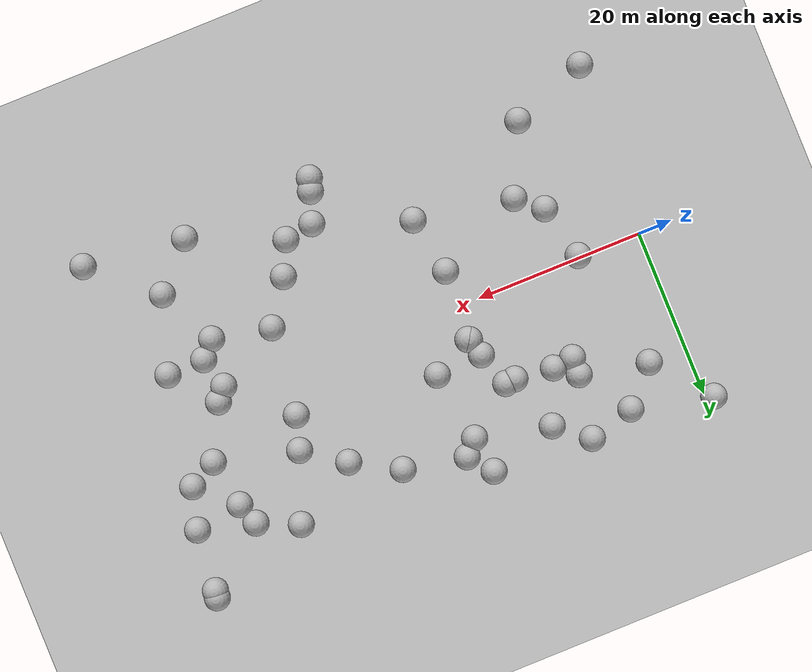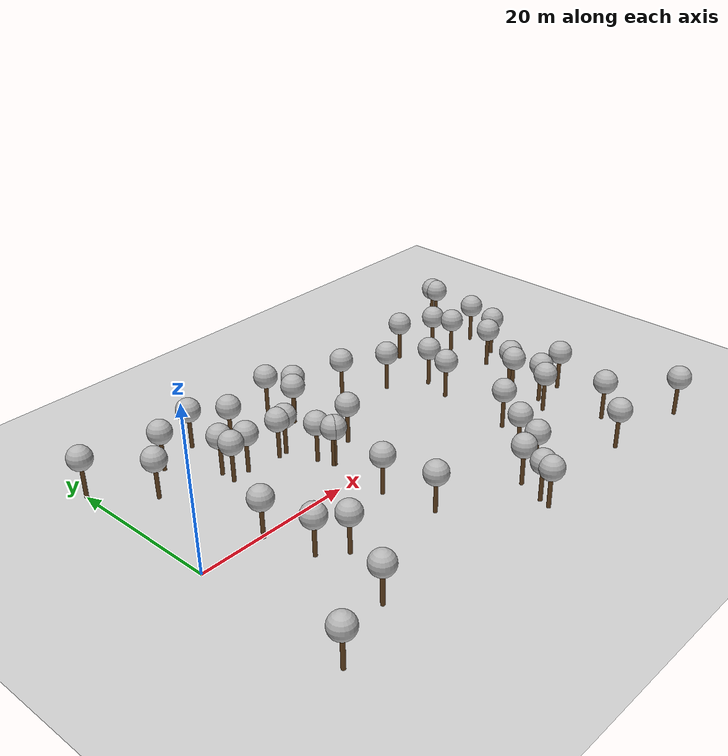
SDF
<sdf version='1.7'>
            <world name='default'>
                <light name='sun' type='directional'>
                <cast_shadows>1</cast_shadows>
                <pose>0 0 10 0 -0 0</pose>
                <diffuse>0.8 0.8 0.8 1</diffuse>
                <specular>0.2 0.2 0.2 1</specular>
                <attenuation>
                    <range>1000</range>
                    <constant>0.9</constant>
                    <linear>0.01</linear>
                    <quadratic>0.001</quadratic>
                </attenuation>
                <direction>-0.5 0.1 -0.9</direction>
                <spot>
                    <inner_angle>0</inner_angle>
                    <outer_angle>0</outer_angle>
                    <falloff>0</falloff>
                </spot>
                </light>
                <model name='ground_plane'>
                <static>1</static>
                <link name='link'>
                    <collision name='collision'>
                    <geometry>
                        <plane>
                        <normal>0 0 1</normal>
                        <size>100 100</size>
                        </plane>
                    </geometry>
                    <surface>
                        <contact>
                        <collide_bitmask>65535</collide_bitmask>
                        <ode/>
                        </contact>
                        <friction>
                        <ode>
                            <mu>100</mu>
                            <mu2>50</mu2>
                        </ode>
                        <torsional>
                            <ode/>
                        </torsional>
                        </friction>
                        <bounce/>
                    </surface>
                    <max_contacts>10</max_contacts>
                    </collision>
                    <visual name='visual'>
                    <cast_shadows>0</cast_shadows>
                    <geometry>
                        <plane>
                        <normal>0 0 1</normal>
                        <size>100 100</size>
                        </plane>
                    </geometry>
                    <material>
                        <script>
                        <uri>file://media/materials/scripts/gazebo.material</uri>
                        <name>Gazebo/Grey</name>
                        </script>
                    </material>
                    </visual>
                    <self_collide>0</self_collide>
                    <enable_wind>0</enable_wind>
                    <kinematic>0</kinematic>
                </link>
                </model>
                <gravity>0 0 -9.8</gravity>
                <magnetic_field>6e-06 2.3e-05 -4.2e-05</magnetic_field>
                <atmosphere type='adiabatic'/>
                <physics type='ode'>
                <max_step_size>0.001</max_step_size>
                <real_time_factor>1</real_time_factor>
                <real_time_update_rate>1000</real_time_update_rate>
                </physics>
                <scene>
                <ambient>0.4 0.4 0.4 1</ambient>
                <background>0.7 0.7 0.7 1</background>
                <shadows>1</shadows>
                </scene>
                <wind/>
                <spherical_coordinates>
                <surface_model>EARTH_WGS84</surface_model>
                <latitude_deg>0</latitude_deg>
                <longitude_deg>0</longitude_deg>
                <elevation>0</elevation>
                <heading_deg>0</heading_deg>
                </spherical_coordinates>

    <model name='tree_simple498'>
      <static>1</static>
      <link name='link'>
        <pose frame=''>0 0 0.1 0 -0 0</pose>
        <collision name='collision_trunk'>
          <pose frame=''>0 0 2 0 -0 0</pose>
          <geometry>
            <cylinder>
              <radius>0.25</radius>
              <length>4</length>
            </cylinder>
          </geometry>
        </collision>
        <collision name='collision_treetop'>
          <pose frame=''>0 0 5.2 0 -0 0</pose>
          <geometry>
            <sphere>
              <radius>1.5</radius>
            </sphere>
          </geometry>
        </collision>
        <visual name='trunk'>
          <pose frame=''>0 0 2 0 -0 0</pose>
          <geometry>
            <cylinder>
              <radius>0.25</radius>
              <length>4</length>
            </cylinder>
          </geometry>
          <material>
            <script>
              <uri>model://tree_simple/scripts</uri>
              <uri>model://tree_simple/materials/textures</uri>
              <name>TreeSimple/Trunk</name>
            </script>
          </material>
        </visual>
        <visual name='treetop'>
          <pose frame=''>0 0 5.2 0 -0 0</pose>
          <geometry>
            <sphere>
              <radius>1.5</radius>
            </sphere>
          </geometry>
          <material>
            <script>
              <uri>model://tree_simple/scripts</uri>
              <uri>model://tree_simple/materials/textures</uri>
              <name>TreeSimple/Treetop</name>
            </script>
          </material>
        </visual>
        <self_collide>0</self_collide>
        <kinematic>0</kinematic>
      </link>
      <pose frame=''>0.0 20.0 0 0 -0 0</pose>
    </model>
        <model name='tree_simple497'>
      <static>1</static>
      <link name='link'>
        <pose frame=''>0 0 0.1 0 -0 0</pose>
        <collision name='collision_trunk'>
          <pose frame=''>0 0 2 0 -0 0</pose>
          <geometry>
            <cylinder>
              <radius>0.25</radius>
              <length>4</length>
            </cylinder>
          </geometry>
        </collision>
        <collision name='collision_treetop'>
          <pose frame=''>0 0 5.2 0 -0 0</pose>
          <geometry>
            <sphere>
              <radius>1.5</radius>
            </sphere>
          </geometry>
        </collision>
        <visual name='trunk'>
          <pose frame=''>0 0 2 0 -0 0</pose>
          <geometry>
            <cylinder>
              <radius>0.25</radius>
              <length>4</length>
            </cylinder>
          </geometry>
          <material>
            <script>
              <uri>model://tree_simple/scripts</uri>
              <uri>model://tree_simple/materials/textures</uri>
              <name>TreeSimple/Trunk</name>
            </script>
          </material>
        </visual>
        <visual name='treetop'>
          <pose frame=''>0 0 5.2 0 -0 0</pose>
          <geometry>
            <sphere>
              <radius>1.5</radius>
            </sphere>
          </geometry>
          <material>
            <script>
              <uri>model://tree_simple/scripts</uri>
              <uri>model://tree_simple/materials/textures</uri>
              <name>TreeSimple/Treetop</name>
            </script>
          </material>
        </visual>
        <self_collide>0</self_collide>
        <kinematic>0</kinematic>
      </link>
      <pose frame=''>0.0 -20.0 0 0 -0 0</pose>
    </model>
        <model name='tree_simple496'>
      <static>1</static>
      <link name='link'>
        <pose frame=''>0 0 0.1 0 -0 0</pose>
        <collision name='collision_trunk'>
          <pose frame=''>0 0 2 0 -0 0</pose>
          <geometry>
            <cylinder>
              <radius>0.25</radius>
              <length>4</length>
            </cylinder>
          </geometry>
        </collision>
        <collision name='collision_treetop'>
          <pose frame=''>0 0 5.2 0 -0 0</pose>
          <geometry>
            <sphere>
              <radius>1.5</radius>
            </sphere>
          </geometry>
        </collision>
        <visual name='trunk'>
          <pose frame=''>0 0 2 0 -0 0</pose>
          <geometry>
            <cylinder>
              <radius>0.25</radius>
              <length>4</length>
            </cylinder>
          </geometry>
          <material>
            <script>
              <uri>model://tree_simple/scripts</uri>
              <uri>model://tree_simple/materials/textures</uri>
              <name>TreeSimple/Trunk</name>
            </script>
          </material>
        </visual>
        <visual name='treetop'>
          <pose frame=''>0 0 5.2 0 -0 0</pose>
          <geometry>
            <sphere>
              <radius>1.5</radius>
            </sphere>
          </geometry>
          <material>
            <script>
              <uri>model://tree_simple/scripts</uri>
              <uri>model://tree_simple/materials/textures</uri>
              <name>TreeSimple/Treetop</name>
            </script>
          </material>
        </visual>
        <self_collide>0</self_collide>
        <kinematic>0</kinematic>
      </link>
      <pose frame=''>60.0 20.0 0 0 -0 0</pose>
    </model>
        <model name='tree_simple495'>
      <static>1</static>
      <link name='link'>
        <pose frame=''>0 0 0.1 0 -0 0</pose>
        <collision name='collision_trunk'>
          <pose frame=''>0 0 2 0 -0 0</pose>
          <geometry>
            <cylinder>
              <radius>0.25</radius>
              <length>4</length>
            </cylinder>
          </geometry>
        </collision>
        <collision name='collision_treetop'>
          <pose frame=''>0 0 5.2 0 -0 0</pose>
          <geometry>
            <sphere>
              <radius>1.5</radius>
            </sphere>
          </geometry>
        </collision>
        <visual name='trunk'>
          <pose frame=''>0 0 2 0 -0 0</pose>
          <geometry>
            <cylinder>
              <radius>0.25</radius>
              <length>4</length>
            </cylinder>
          </geometry>
          <material>
            <script>
              <uri>model://tree_simple/scripts</uri>
              <uri>model://tree_simple/materials/textures</uri>
              <name>TreeSimple/Trunk</name>
            </script>
          </material>
        </visual>
        <visual name='treetop'>
          <pose frame=''>0 0 5.2 0 -0 0</pose>
          <geometry>
            <sphere>
              <radius>1.5</radius>
            </sphere>
          </geometry>
          <material>
            <script>
              <uri>model://tree_simple/scripts</uri>
              <uri>model://tree_simple/materials/textures</uri>
              <name>TreeSimple/Treetop</name>
            </script>
          </material>
        </visual>
        <self_collide>0</self_collide>
        <kinematic>0</kinematic>
      </link>
      <pose frame=''>60.0 -20.0 0 0 -0 0</pose>
    </model>
    <model name="tree_4_0"><pose frame="">54.72 5.77 0 0 -0 0</pose><static>1</static><link name="link"><pose frame="">0 0 0.1 0 -0 0</pose><collision name="collision_trunk"><pose frame="">0 0 2 0 -0 0</pose><geometry><cylinder><radius>0.25</radius><length>4</length></cylinder></geometry></collision><collision name="collision_treetop"><pose frame="">0 0 5.2 0 -0 0</pose><geometry><sphere><radius>1.5</radius></sphere></geometry></collision><visual name="trunk"><pose frame="">0 0 2 0 -0 0</pose><geometry><cylinder><radius>0.25</radius><length>4</length></cylinder></geometry><material><script><uri>model://tree_simple/scripts</uri><uri>model://tree_simple/materials/textures</uri><name>TreeSimple/Trunk</name></script></material></visual><visual name="treetop"><pose frame="">0 0 5.2 0 -0 0</pose><geometry><sphere><radius>1.5</radius></sphere></geometry><material><script><uri>model://tree_simple/scripts</uri><uri>model://tree_simple/materials/textures</uri><name>TreeSimple/Treetop</name></script></material></visual><self_collide>0</self_collide><kinematic>0</kinematic></link></model><model name="tree_4_1"><pose frame="">21.07 9.92 0 0 -0 0</pose><static>1</static><link name="link"><pose frame="">0 0 0.1 0 -0 0</pose><collision name="collision_trunk"><pose frame="">0 0 2 0 -0 0</pose><geometry><cylinder><radius>0.25</radius><length>4</length></cylinder></geometry></collision><collision name="collision_treetop"><pose frame="">0 0 5.2 0 -0 0</pose><geometry><sphere><radius>1.5</radius></sphere></geometry></collision><visual name="trunk"><pose frame="">0 0 2 0 -0 0</pose><geometry><cylinder><radius>0.25</radius><length>4</length></cylinder></geometry><material><script><uri>model://tree_simple/scripts</uri><uri>model://tree_simple/materials/textures</uri><name>TreeSimple/Trunk</name></script></material></visual><visual name="treetop"><pose frame="">0 0 5.2 0 -0 0</pose><geometry><sphere><radius>1.5</radius></sphere></geometry><material><script><uri>model://tree_simple/scripts</uri><uri>model://tree_simple/materials/textures</uri><name>TreeSimple/Treetop</name></script></material></visual><self_collide>0</self_collide><kinematic>0</kinematic></link></model><model name="tree_4_2"><pose frame="">13.05 10.04 0 0 -0 0</pose><static>1</static><link name="link"><pose frame="">0 0 0.1 0 -0 0</pose><collision name="collision_trunk"><pose frame="">0 0 2 0 -0 0</pose><geometry><cylinder><radius>0.25</radius><length>4</length></cylinder></geometry></collision><collision name="collision_treetop"><pose frame="">0 0 5.2 0 -0 0</pose><geometry><sphere><radius>1.5</radius></sphere></geometry></collision><visual name="trunk"><pose frame="">0 0 2 0 -0 0</pose><geometry><cylinder><radius>0.25</radius><length>4</length></cylinder></geometry><material><script><uri>model://tree_simple/scripts</uri><uri>model://tree_simple/materials/textures</uri><name>TreeSimple/Trunk</name></script></material></visual><visual name="treetop"><pose frame="">0 0 5.2 0 -0 0</pose><geometry><sphere><radius>1.5</radius></sphere></geometry><material><script><uri>model://tree_simple/scripts</uri><uri>model://tree_simple/materials/textures</uri><name>TreeSimple/Treetop</name></script></material></visual><self_collide>0</self_collide><kinematic>0</kinematic></link></model><model name="tree_4_3"><pose frame="">8.17 -0.31 0 0 -0 0</pose><static>1</static><link name="link"><pose frame="">0 0 0.1 0 -0 0</pose><collision name="collision_trunk"><pose frame="">0 0 2 0 -0 0</pose><geometry><cylinder><radius>0.25</radius><length>4</length></cylinder></geometry></collision><collision name="collision_treetop"><pose frame="">0 0 5.2 0 -0 0</pose><geometry><sphere><radius>1.5</radius></sphere></geometry></collision><visual name="trunk"><pose frame="">0 0 2 0 -0 0</pose><geometry><cylinder><radius>0.25</radius><length>4</length></cylinder></geometry><material><script><uri>model://tree_simple/scripts</uri><uri>model://tree_simple/materials/textures</uri><name>TreeSimple/Trunk</name></script></material></visual><visual name="treetop"><pose frame="">0 0 5.2 0 -0 0</pose><geometry><sphere><radius>1.5</radius></sphere></geometry><material><script><uri>model://tree_simple/scripts</uri><uri>model://tree_simple/materials/textures</uri><name>TreeSimple/Treetop</name></script></material></visual><self_collide>0</self_collide><kinematic>0</kinematic></link></model><model name="tree_4_4"><pose frame="">18.03 16.28 0 0 -0 0</pose><static>1</static><link name="link"><pose frame="">0 0 0.1 0 -0 0</pose><collision name="collision_trunk"><pose frame="">0 0 2 0 -0 0</pose><geometry><cylinder><radius>0.25</radius><length>4</length></cylinder></geometry></collision><collision name="collision_treetop"><pose frame="">0 0 5.2 0 -0 0</pose><geometry><sphere><radius>1.5</radius></sphere></geometry></collision><visual name="trunk"><pose frame="">0 0 2 0 -0 0</pose><geometry><cylinder><radius>0.25</radius><length>4</length></cylinder></geometry><material><script><uri>model://tree_simple/scripts</uri><uri>model://tree_simple/materials/textures</uri><name>TreeSimple/Trunk</name></script></material></visual><visual name="treetop"><pose frame="">0 0 5.2 0 -0 0</pose><geometry><sphere><radius>1.5</radius></sphere></geometry><material><script><uri>model://tree_simple/scripts</uri><uri>model://tree_simple/materials/textures</uri><name>TreeSimple/Treetop</name></script></material></visual><self_collide>0</self_collide><kinematic>0</kinematic></link></model><model name="tree_4_5"><pose frame="">40.67 11.48 0 0 -0 0</pose><static>1</static><link name="link"><pose frame="">0 0 0.1 0 -0 0</pose><collision name="collision_trunk"><pose frame="">0 0 2 0 -0 0</pose><geometry><cylinder><radius>0.25</radius><length>4</length></cylinder></geometry></collision><collision name="collision_treetop"><pose frame="">0 0 5.2 0 -0 0</pose><geometry><sphere><radius>1.5</radius></sphere></geometry></collision><visual name="trunk"><pose frame="">0 0 2 0 -0 0</pose><geometry><cylinder><radius>0.25</radius><length>4</length></cylinder></geometry><material><script><uri>model://tree_simple/scripts</uri><uri>model://tree_simple/materials/textures</uri><name>TreeSimple/Trunk</name></script></material></visual><visual name="treetop"><pose frame="">0 0 5.2 0 -0 0</pose><geometry><sphere><radius>1.5</radius></sphere></geometry><material><script><uri>model://tree_simple/scripts</uri><uri>model://tree_simple/materials/textures</uri><name>TreeSimple/Treetop</name></script></material></visual><self_collide>0</self_collide><kinematic>0</kinematic></link></model><model name="tree_4_6"><pose frame="">9.16 17.82 0 0 -0 0</pose><static>1</static><link name="link"><pose frame="">0 0 0.1 0 -0 0</pose><collision name="collision_trunk"><pose frame="">0 0 2 0 -0 0</pose><geometry><cylinder><radius>0.25</radius><length>4</length></cylinder></geometry></collision><collision name="collision_treetop"><pose frame="">0 0 5.2 0 -0 0</pose><geometry><sphere><radius>1.5</radius></sphere></geometry></collision><visual name="trunk"><pose frame="">0 0 2 0 -0 0</pose><geometry><cylinder><radius>0.25</radius><length>4</length></cylinder></geometry><material><script><uri>model://tree_simple/scripts</uri><uri>model://tree_simple/materials/textures</uri><name>TreeSimple/Trunk</name></script></material></visual><visual name="treetop"><pose frame="">0 0 5.2 0 -0 0</pose><geometry><sphere><radius>1.5</radius></sphere></geometry><material><script><uri>model://tree_simple/scripts</uri><uri>model://tree_simple/materials/textures</uri><name>TreeSimple/Treetop</name></script></material></visual><self_collide>0</self_collide><kinematic>0</kinematic></link></model><model name="tree_4_7"><pose frame="">51.4 -5.26 0 0 -0 0</pose><static>1</static><link name="link"><pose frame="">0 0 0.1 0 -0 0</pose><collision name="collision_trunk"><pose frame="">0 0 2 0 -0 0</pose><geometry><cylinder><radius>0.25</radius><length>4</length></cylinder></geometry></collision><collision name="collision_treetop"><pose frame="">0 0 5.2 0 -0 0</pose><geometry><sphere><radius>1.5</radius></sphere></geometry></collision><visual name="trunk"><pose frame="">0 0 2 0 -0 0</pose><geometry><cylinder><radius>0.25</radius><length>4</length></cylinder></geometry><material><script><uri>model://tree_simple/scripts</uri><uri>model://tree_simple/materials/textures</uri><name>TreeSimple/Trunk</name></script></material></visual><visual name="treetop"><pose frame="">0 0 5.2 0 -0 0</pose><geometry><sphere><radius>1.5</radius></sphere></geometry><material><script><uri>model://tree_simple/scripts</uri><uri>model://tree_simple/materials/textures</uri><name>TreeSimple/Treetop</name></script></material></visual><self_collide>0</self_collide><kinematic>0</kinematic></link></model><model name="tree_4_8"><pose frame="">51.66 -0.26 0 0 -0 0</pose><static>1</static><link name="link"><pose frame="">0 0 0.1 0 -0 0</pose><collision name="collision_trunk"><pose frame="">0 0 2 0 -0 0</pose><geometry><cylinder><radius>0.25</radius><length>4</length></cylinder></geometry></collision><collision name="collision_treetop"><pose frame="">0 0 5.2 0 -0 0</pose><geometry><sphere><radius>1.5</radius></sphere></geometry></collision><visual name="trunk"><pose frame="">0 0 2 0 -0 0</pose><geometry><cylinder><radius>0.25</radius><length>4</length></cylinder></geometry><material><script><uri>model://tree_simple/scripts</uri><uri>model://tree_simple/materials/textures</uri><name>TreeSimple/Trunk</name></script></material></visual><visual name="treetop"><pose frame="">0 0 5.2 0 -0 0</pose><geometry><sphere><radius>1.5</radius></sphere></geometry><material><script><uri>model://tree_simple/scripts</uri><uri>model://tree_simple/materials/textures</uri><name>TreeSimple/Treetop</name></script></material></visual><self_collide>0</self_collide><kinematic>0</kinematic></link></model><model name="tree_4_9"><pose frame="">23.81 -10.92 0 0 -0 0</pose><static>1</static><link name="link"><pose frame="">0 0 0.1 0 -0 0</pose><collision name="collision_trunk"><pose frame="">0 0 2 0 -0 0</pose><geometry><cylinder><radius>0.25</radius><length>4</length></cylinder></geometry></collision><collision name="collision_treetop"><pose frame="">0 0 5.2 0 -0 0</pose><geometry><sphere><radius>1.5</radius></sphere></geometry></collision><visual name="trunk"><pose frame="">0 0 2 0 -0 0</pose><geometry><cylinder><radius>0.25</radius><length>4</length></cylinder></geometry><material><script><uri>model://tree_simple/scripts</uri><uri>model://tree_simple/materials/textures</uri><name>TreeSimple/Trunk</name></script></material></visual><visual name="treetop"><pose frame="">0 0 5.2 0 -0 0</pose><geometry><sphere><radius>1.5</radius></sphere></geometry><material><script><uri>model://tree_simple/scripts</uri><uri>model://tree_simple/materials/textures</uri><name>TreeSimple/Treetop</name></script></material></visual><self_collide>0</self_collide><kinematic>0</kinematic></link></model><model name="tree_4_10"><pose frame="">55.77 -5.17 0 0 -0 0</pose><static>1</static><link name="link"><pose frame="">0 0 0.1 0 -0 0</pose><collision name="collision_trunk"><pose frame="">0 0 2 0 -0 0</pose><geometry><cylinder><radius>0.25</radius><length>4</length></cylinder></geometry></collision><collision name="collision_treetop"><pose frame="">0 0 5.2 0 -0 0</pose><geometry><sphere><radius>1.5</radius></sphere></geometry></collision><visual name="trunk"><pose frame="">0 0 2 0 -0 0</pose><geometry><cylinder><radius>0.25</radius><length>4</length></cylinder></geometry><material><script><uri>model://tree_simple/scripts</uri><uri>model://tree_simple/materials/textures</uri><name>TreeSimple/Trunk</name></script></material></visual><visual name="treetop"><pose frame="">0 0 5.2 0 -0 0</pose><geometry><sphere><radius>1.5</radius></sphere></geometry><material><script><uri>model://tree_simple/scripts</uri><uri>model://tree_simple/materials/textures</uri><name>TreeSimple/Treetop</name></script></material></visual><self_collide>0</self_collide><kinematic>0</kinematic></link></model><model name="tree_4_11"><pose frame="">22.99 3.85 0 0 -0 0</pose><static>1</static><link name="link"><pose frame="">0 0 0.1 0 -0 0</pose><collision name="collision_trunk"><pose frame="">0 0 2 0 -0 0</pose><geometry><cylinder><radius>0.25</radius><length>4</length></cylinder></geometry></collision><collision name="collision_treetop"><pose frame="">0 0 5.2 0 -0 0</pose><geometry><sphere><radius>1.5</radius></sphere></geometry></collision><visual name="trunk"><pose frame="">0 0 2 0 -0 0</pose><geometry><cylinder><radius>0.25</radius><length>4</length></cylinder></geometry><material><script><uri>model://tree_simple/scripts</uri><uri>model://tree_simple/materials/textures</uri><name>TreeSimple/Trunk</name></script></material></visual><visual name="treetop"><pose frame="">0 0 5.2 0 -0 0</pose><geometry><sphere><radius>1.5</radius></sphere></geometry><material><script><uri>model://tree_simple/scripts</uri><uri>model://tree_simple/materials/textures</uri><name>TreeSimple/Treetop</name></script></material></visual><self_collide>0</self_collide><kinematic>0</kinematic></link></model><model name="tree_4_12"><pose frame="">22.39 5.93 0 0 -0 0</pose><static>1</static><link name="link"><pose frame="">0 0 0.1 0 -0 0</pose><collision name="collision_trunk"><pose frame="">0 0 2 0 -0 0</pose><geometry><cylinder><radius>0.25</radius><length>4</length></cylinder></geometry></collision><collision name="collision_treetop"><pose frame="">0 0 5.2 0 -0 0</pose><geometry><sphere><radius>1.5</radius></sphere></geometry></collision><visual name="trunk"><pose frame="">0 0 2 0 -0 0</pose><geometry><cylinder><radius>0.25</radius><length>4</length></cylinder></geometry><material><script><uri>model://tree_simple/scripts</uri><uri>model://tree_simple/materials/textures</uri><name>TreeSimple/Trunk</name></script></material></visual><visual name="treetop"><pose frame="">0 0 5.2 0 -0 0</pose><geometry><sphere><radius>1.5</radius></sphere></geometry><material><script><uri>model://tree_simple/scripts</uri><uri>model://tree_simple/materials/textures</uri><name>TreeSimple/Treetop</name></script></material></visual><self_collide>0</self_collide><kinematic>0</kinematic></link></model><model name="tree_4_13"><pose frame="">48.29 -18.65 0 0 -0 0</pose><static>1</static><link name="link"><pose frame="">0 0 0.1 0 -0 0</pose><collision name="collision_trunk"><pose frame="">0 0 2 0 -0 0</pose><geometry><cylinder><radius>0.25</radius><length>4</length></cylinder></geometry></collision><collision name="collision_treetop"><pose frame="">0 0 5.2 0 -0 0</pose><geometry><sphere><radius>1.5</radius></sphere></geometry></collision><visual name="trunk"><pose frame="">0 0 2 0 -0 0</pose><geometry><cylinder><radius>0.25</radius><length>4</length></cylinder></geometry><material><script><uri>model://tree_simple/scripts</uri><uri>model://tree_simple/materials/textures</uri><name>TreeSimple/Trunk</name></script></material></visual><visual name="treetop"><pose frame="">0 0 5.2 0 -0 0</pose><geometry><sphere><radius>1.5</radius></sphere></geometry><material><script><uri>model://tree_simple/scripts</uri><uri>model://tree_simple/materials/textures</uri><name>TreeSimple/Treetop</name></script></material></visual><self_collide>0</self_collide><kinematic>0</kinematic></link></model><model name="tree_4_14"><pose frame="">35.34 14.52 0 0 -0 0</pose><static>1</static><link name="link"><pose frame="">0 0 0.1 0 -0 0</pose><collision name="collision_trunk"><pose frame="">0 0 2 0 -0 0</pose><geometry><cylinder><radius>0.25</radius><length>4</length></cylinder></geometry></collision><collision name="collision_treetop"><pose frame="">0 0 5.2 0 -0 0</pose><geometry><sphere><radius>1.5</radius></sphere></geometry></collision><visual name="trunk"><pose frame="">0 0 2 0 -0 0</pose><geometry><cylinder><radius>0.25</radius><length>4</length></cylinder></geometry><material><script><uri>model://tree_simple/scripts</uri><uri>model://tree_simple/materials/textures</uri><name>TreeSimple/Trunk</name></script></material></visual><visual name="treetop"><pose frame="">0 0 5.2 0 -0 0</pose><geometry><sphere><radius>1.5</radius></sphere></geometry><material><script><uri>model://tree_simple/scripts</uri><uri>model://tree_simple/materials/textures</uri><name>TreeSimple/Treetop</name></script></material></visual><self_collide>0</self_collide><kinematic>0</kinematic></link></model><model name="tree_4_15"><pose frame="">28.15 15.91 0 0 -0 0</pose><static>1</static><link name="link"><pose frame="">0 0 0.1 0 -0 0</pose><collision name="collision_trunk"><pose frame="">0 0 2 0 -0 0</pose><geometry><cylinder><radius>0.25</radius><length>4</length></cylinder></geometry></collision><collision name="collision_treetop"><pose frame="">0 0 5.2 0 -0 0</pose><geometry><sphere><radius>1.5</radius></sphere></geometry></collision><visual name="trunk"><pose frame="">0 0 2 0 -0 0</pose><geometry><cylinder><radius>0.25</radius><length>4</length></cylinder></geometry><material><script><uri>model://tree_simple/scripts</uri><uri>model://tree_simple/materials/textures</uri><name>TreeSimple/Trunk</name></script></material></visual><visual name="treetop"><pose frame="">0 0 5.2 0 -0 0</pose><geometry><sphere><radius>1.5</radius></sphere></geometry><material><script><uri>model://tree_simple/scripts</uri><uri>model://tree_simple/materials/textures</uri><name>TreeSimple/Treetop</name></script></material></visual><self_collide>0</self_collide><kinematic>0</kinematic></link></model><model name="tree_4_16"><pose frame="">59.9 19.19 0 0 -0 0</pose><static>1</static><link name="link"><pose frame="">0 0 0.1 0 -0 0</pose><collision name="collision_trunk"><pose frame="">0 0 2 0 -0 0</pose><geometry><cylinder><radius>0.25</radius><length>4</length></cylinder></geometry></collision><collision name="collision_treetop"><pose frame="">0 0 5.2 0 -0 0</pose><geometry><sphere><radius>1.5</radius></sphere></geometry></collision><visual name="trunk"><pose frame="">0 0 2 0 -0 0</pose><geometry><cylinder><radius>0.25</radius><length>4</length></cylinder></geometry><material><script><uri>model://tree_simple/scripts</uri><uri>model://tree_simple/materials/textures</uri><name>TreeSimple/Trunk</name></script></material></visual><visual name="treetop"><pose frame="">0 0 5.2 0 -0 0</pose><geometry><sphere><radius>1.5</radius></sphere></geometry><material><script><uri>model://tree_simple/scripts</uri><uri>model://tree_simple/materials/textures</uri><name>TreeSimple/Treetop</name></script></material></visual><self_collide>0</self_collide><kinematic>0</kinematic></link></model><model name="tree_4_17"><pose frame="">13.08 12.1 0 0 -0 0</pose><static>1</static><link name="link"><pose frame="">0 0 0.1 0 -0 0</pose><collision name="collision_trunk"><pose frame="">0 0 2 0 -0 0</pose><geometry><cylinder><radius>0.25</radius><length>4</length></cylinder></geometry></collision><collision name="collision_treetop"><pose frame="">0 0 5.2 0 -0 0</pose><geometry><sphere><radius>1.5</radius></sphere></geometry></collision><visual name="trunk"><pose frame="">0 0 2 0 -0 0</pose><geometry><cylinder><radius>0.25</radius><length>4</length></cylinder></geometry><material><script><uri>model://tree_simple/scripts</uri><uri>model://tree_simple/materials/textures</uri><name>TreeSimple/Trunk</name></script></material></visual><visual name="treetop"><pose frame="">0 0 5.2 0 -0 0</pose><geometry><sphere><radius>1.5</radius></sphere></geometry><material><script><uri>model://tree_simple/scripts</uri><uri>model://tree_simple/materials/textures</uri><name>TreeSimple/Treetop</name></script></material></visual><self_collide>0</self_collide><kinematic>0</kinematic></link></model><model name="tree_4_18"><pose frame="">59.2 12.15 0 0 -0 0</pose><static>1</static><link name="link"><pose frame="">0 0 0.1 0 -0 0</pose><collision name="collision_trunk"><pose frame="">0 0 2 0 -0 0</pose><geometry><cylinder><radius>0.25</radius><length>4</length></cylinder></geometry></collision><collision name="collision_treetop"><pose frame="">0 0 5.2 0 -0 0</pose><geometry><sphere><radius>1.5</radius></sphere></geometry></collision><visual name="trunk"><pose frame="">0 0 2 0 -0 0</pose><geometry><cylinder><radius>0.25</radius><length>4</length></cylinder></geometry><material><script><uri>model://tree_simple/scripts</uri><uri>model://tree_simple/materials/textures</uri><name>TreeSimple/Trunk</name></script></material></visual><visual name="treetop"><pose frame="">0 0 5.2 0 -0 0</pose><geometry><sphere><radius>1.5</radius></sphere></geometry><material><script><uri>model://tree_simple/scripts</uri><uri>model://tree_simple/materials/textures</uri><name>TreeSimple/Treetop</name></script></material></visual><self_collide>0</self_collide><kinematic>0</kinematic></link></model><model name="tree_4_19"><pose frame="">25.97 18.53 0 0 -0 0</pose><static>1</static><link name="link"><pose frame="">0 0 0.1 0 -0 0</pose><collision name="collision_trunk"><pose frame="">0 0 2 0 -0 0</pose><geometry><cylinder><radius>0.25</radius><length>4</length></cylinder></geometry></collision><collision name="collision_treetop"><pose frame="">0 0 5.2 0 -0 0</pose><geometry><sphere><radius>1.5</radius></sphere></geometry></collision><visual name="trunk"><pose frame="">0 0 2 0 -0 0</pose><geometry><cylinder><radius>0.25</radius><length>4</length></cylinder></geometry><material><script><uri>model://tree_simple/scripts</uri><uri>model://tree_simple/materials/textures</uri><name>TreeSimple/Trunk</name></script></material></visual><visual name="treetop"><pose frame="">0 0 5.2 0 -0 0</pose><geometry><sphere><radius>1.5</radius></sphere></geometry><material><script><uri>model://tree_simple/scripts</uri><uri>model://tree_simple/materials/textures</uri><name>TreeSimple/Treetop</name></script></material></visual><self_collide>0</self_collide><kinematic>0</kinematic></link></model><model name="tree_4_20"><pose frame="">52.85 13.89 0 0 -0 0</pose><static>1</static><link name="link"><pose frame="">0 0 0.1 0 -0 0</pose><collision name="collision_trunk"><pose frame="">0 0 2 0 -0 0</pose><geometry><cylinder><radius>0.25</radius><length>4</length></cylinder></geometry></collision><collision name="collision_treetop"><pose frame="">0 0 5.2 0 -0 0</pose><geometry><sphere><radius>1.5</radius></sphere></geometry></collision><visual name="trunk"><pose frame="">0 0 2 0 -0 0</pose><geometry><cylinder><radius>0.25</radius><length>4</length></cylinder></geometry><material><script><uri>model://tree_simple/scripts</uri><uri>model://tree_simple/materials/textures</uri><name>TreeSimple/Trunk</name></script></material></visual><visual name="treetop"><pose frame="">0 0 5.2 0 -0 0</pose><geometry><sphere><radius>1.5</radius></sphere></geometry><material><script><uri>model://tree_simple/scripts</uri><uri>model://tree_simple/materials/textures</uri><name>TreeSimple/Treetop</name></script></material></visual><self_collide>0</self_collide><kinematic>0</kinematic></link></model><model name="tree_4_21"><pose frame="">49.71 -7.08 0 0 -0 0</pose><static>1</static><link name="link"><pose frame="">0 0 0.1 0 -0 0</pose><collision name="collision_trunk"><pose frame="">0 0 2 0 -0 0</pose><geometry><cylinder><radius>0.25</radius><length>4</length></cylinder></geometry></collision><collision name="collision_treetop"><pose frame="">0 0 5.2 0 -0 0</pose><geometry><sphere><radius>1.5</radius></sphere></geometry></collision><visual name="trunk"><pose frame="">0 0 2 0 -0 0</pose><geometry><cylinder><radius>0.25</radius><length>4</length></cylinder></geometry><material><script><uri>model://tree_simple/scripts</uri><uri>model://tree_simple/materials/textures</uri><name>TreeSimple/Trunk</name></script></material></visual><visual name="treetop"><pose frame="">0 0 5.2 0 -0 0</pose><geometry><sphere><radius>1.5</radius></sphere></geometry><material><script><uri>model://tree_simple/scripts</uri><uri>model://tree_simple/materials/textures</uri><name>TreeSimple/Treetop</name></script></material></visual><self_collide>0</self_collide><kinematic>0</kinematic></link></model><model name="tree_4_22"><pose frame="">34.47 -14.81 0 0 -0 0</pose><static>1</static><link name="link"><pose frame="">0 0 0.1 0 -0 0</pose><collision name="collision_trunk"><pose frame="">0 0 2 0 -0 0</pose><geometry><cylinder><radius>0.25</radius><length>4</length></cylinder></geometry></collision><collision name="collision_treetop"><pose frame="">0 0 5.2 0 -0 0</pose><geometry><sphere><radius>1.5</radius></sphere></geometry></collision><visual name="trunk"><pose frame="">0 0 2 0 -0 0</pose><geometry><cylinder><radius>0.25</radius><length>4</length></cylinder></geometry><material><script><uri>model://tree_simple/scripts</uri><uri>model://tree_simple/materials/textures</uri><name>TreeSimple/Trunk</name></script></material></visual><visual name="treetop"><pose frame="">0 0 5.2 0 -0 0</pose><geometry><sphere><radius>1.5</radius></sphere></geometry><material><script><uri>model://tree_simple/scripts</uri><uri>model://tree_simple/materials/textures</uri><name>TreeSimple/Treetop</name></script></material></visual><self_collide>0</self_collide><kinematic>0</kinematic></link></model><model name="tree_4_23"><pose frame="">42.99 -5.69 0 0 -0 0</pose><static>1</static><link name="link"><pose frame="">0 0 0.1 0 -0 0</pose><collision name="collision_trunk"><pose frame="">0 0 2 0 -0 0</pose><geometry><cylinder><radius>0.25</radius><length>4</length></cylinder></geometry></collision><collision name="collision_treetop"><pose frame="">0 0 5.2 0 -0 0</pose><geometry><sphere><radius>1.5</radius></sphere></geometry></collision><visual name="trunk"><pose frame="">0 0 2 0 -0 0</pose><geometry><cylinder><radius>0.25</radius><length>4</length></cylinder></geometry><material><script><uri>model://tree_simple/scripts</uri><uri>model://tree_simple/materials/textures</uri><name>TreeSimple/Trunk</name></script></material></visual><visual name="treetop"><pose frame="">0 0 5.2 0 -0 0</pose><geometry><sphere><radius>1.5</radius></sphere></geometry><material><script><uri>model://tree_simple/scripts</uri><uri>model://tree_simple/materials/textures</uri><name>TreeSimple/Treetop</name></script></material></visual><self_collide>0</self_collide><kinematic>0</kinematic></link></model><model name="tree_4_24"><pose frame="">32.8 -19.66 0 0 -0 0</pose><static>1</static><link name="link"><pose frame="">0 0 0.1 0 -0 0</pose><collision name="collision_trunk"><pose frame="">0 0 2 0 -0 0</pose><geometry><cylinder><radius>0.25</radius><length>4</length></cylinder></geometry></collision><collision name="collision_treetop"><pose frame="">0 0 5.2 0 -0 0</pose><geometry><sphere><radius>1.5</radius></sphere></geometry></collision><visual name="trunk"><pose frame="">0 0 2 0 -0 0</pose><geometry><cylinder><radius>0.25</radius><length>4</length></cylinder></geometry><material><script><uri>model://tree_simple/scripts</uri><uri>model://tree_simple/materials/textures</uri><name>TreeSimple/Trunk</name></script></material></visual><visual name="treetop"><pose frame="">0 0 5.2 0 -0 0</pose><geometry><sphere><radius>1.5</radius></sphere></geometry><material><script><uri>model://tree_simple/scripts</uri><uri>model://tree_simple/materials/textures</uri><name>TreeSimple/Treetop</name></script></material></visual><self_collide>0</self_collide><kinematic>0</kinematic></link></model>
    <model name="tree_1_21">
  <pose frame="">15.47 10.32 0 0 -0 0</pose>
  <static>1</static>
  <link name="link">
    <pose frame="">0 0 0.1 0 -0 0</pose>
    <collision name="collision_trunk"><pose frame="">0 0 2 0 -0 0</pose><geometry><cylinder><radius>0.25</radius><length>4</length></cylinder></geometry></collision>
    <collision name="collision_treetop"><pose frame="">0 0 5.2 0 -0 0</pose><geometry><sphere><radius>1.5</radius></sphere></geometry></collision>
    <visual name="trunk"><pose frame="">0 0 2 0 -0 0</pose><geometry><cylinder><radius>0.25</radius><length>4</length></cylinder></geometry><material><script><uri>model://tree_simple/scripts</uri><uri>model://tree_simple/materials/textures</uri><name>TreeSimple/Trunk</name></script></material></visual>
    <visual name="treetop"><pose frame="">0 0 5.2 0 -0 0</pose><geometry><sphere><radius>1.5</radius></sphere></geometry><material><script><uri>model://tree_simple/scripts</uri><uri>model://tree_simple/materials/textures</uri><name>TreeSimple/Treetop</name></script></material></visual>
    <self_collide>0</self_collide><kinematic>0</kinematic>
  </link>
</model>
<model name="tree_1_22">
  <pose frame="">52.97 -13.74 0 0 -0 0</pose>
  <static>1</static>
  <link name="link">
    <pose frame="">0 0 0.1 0 -0 0</pose>
    <collision name="collision_trunk"><pose frame="">0 0 2 0 -0 0</pose><geometry><cylinder><radius>0.25</radius><length>4</length></cylinder></geometry></collision>
    <collision name="collision_treetop"><pose frame="">0 0 5.2 0 -0 0</pose><geometry><sphere><radius>1.5</radius></sphere></geometry></collision>
    <visual name="trunk"><pose frame="">0 0 2 0 -0 0</pose><geometry><cylinder><radius>0.25</radius><length>4</length></cylinder></geometry><material><script><uri>model://tree_simple/scripts</uri><uri>model://tree_simple/materials/textures</uri><name>TreeSimple/Trunk</name></script></material></visual>
    <visual name="treetop"><pose frame="">0 0 5.2 0 -0 0</pose><geometry><sphere><radius>1.5</radius></sphere></geometry><material><script><uri>model://tree_simple/scripts</uri><uri>model://tree_simple/materials/textures</uri><name>TreeSimple/Treetop</name></script></material></visual>
    <self_collide>0</self_collide><kinematic>0</kinematic>
  </link>
</model>
<model name="tree_1_23">
  <pose frame="">27.81 6.18 0 0 -0 0</pose>
  <static>1</static>
  <link name="link">
    <pose frame="">0 0 0.1 0 -0 0</pose>
    <collision name="collision_trunk"><pose frame="">0 0 2 0 -0 0</pose><geometry><cylinder><radius>0.25</radius><length>4</length></cylinder></geometry></collision>
    <collision name="collision_treetop"><pose frame="">0 0 5.2 0 -0 0</pose><geometry><sphere><radius>1.5</radius></sphere></geometry></collision>
    <visual name="trunk"><pose frame="">0 0 2 0 -0 0</pose><geometry><cylinder><radius>0.25</radius><length>4</length></cylinder></geometry><material><script><uri>model://tree_simple/scripts</uri><uri>model://tree_simple/materials/textures</uri><name>TreeSimple/Trunk</name></script></material></visual>
    <visual name="treetop"><pose frame="">0 0 5.2 0 -0 0</pose><geometry><sphere><radius>1.5</radius></sphere></geometry><material><script><uri>model://tree_simple/scripts</uri><uri>model://tree_simple/materials/textures</uri><name>TreeSimple/Treetop</name></script></material></visual>
    <self_collide>0</self_collide><kinematic>0</kinematic>
  </link>
</model>
<model name="tree_1_24">
  <pose frame="">39.64 -10.52 0 0 -0 0</pose>
  <static>1</static>
  <link name="link">
    <pose frame="">0 0 0.1 0 -0 0</pose>
    <collision name="collision_trunk"><pose frame="">0 0 2 0 -0 0</pose><geometry><cylinder><radius>0.25</radius><length>4</length></cylinder></geometry></collision>
    <collision name="collision_treetop"><pose frame="">0 0 5.2 0 -0 0</pose><geometry><sphere><radius>1.5</radius></sphere></geometry></collision>
    <visual name="trunk"><pose frame="">0 0 2 0 -0 0</pose><geometry><cylinder><radius>0.25</radius><length>4</length></cylinder></geometry><material><script><uri>model://tree_simple/scripts</uri><uri>model://tree_simple/materials/textures</uri><name>TreeSimple/Trunk</name></script></material></visual>
    <visual name="treetop"><pose frame="">0 0 5.2 0 -0 0</pose><geometry><sphere><radius>1.5</radius></sphere></geometry><material><script><uri>model://tree_simple/scripts</uri><uri>model://tree_simple/materials/textures</uri><name>TreeSimple/Treetop</name></script></material></visual>
    <self_collide>0</self_collide><kinematic>0</kinematic>
  </link>
</model>
<model name="tree_1_25">
  <pose frame="">5.29 13.76 0 0 -0 0</pose>
  <static>1</static>
  <link name="link">
    <pose frame="">0 0 0.1 0 -0 0</pose>
    <collision name="collision_trunk"><pose frame="">0 0 2 0 -0 0</pose><geometry><cylinder><radius>0.25</radius><length>4</length></cylinder></geometry></collision>
    <collision name="collision_treetop"><pose frame="">0 0 5.2 0 -0 0</pose><geometry><sphere><radius>1.5</radius></sphere></geometry></collision>
    <visual name="trunk"><pose frame="">0 0 2 0 -0 0</pose><geometry><cylinder><radius>0.25</radius><length>4</length></cylinder></geometry><material><script><uri>model://tree_simple/scripts</uri><uri>model://tree_simple/materials/textures</uri><name>TreeSimple/Trunk</name></script></material></visual>
    <visual name="treetop"><pose frame="">0 0 5.2 0 -0 0</pose><geometry><sphere><radius>1.5</radius></sphere></geometry><material><script><uri>model://tree_simple/scripts</uri><uri>model://tree_simple/materials/textures</uri><name>TreeSimple/Treetop</name></script></material></visual>
    <self_collide>0</self_collide><kinematic>0</kinematic>
  </link>
</model>
<model name="tree_1_26">
  <pose frame="">48.21 15.93 0 0 -0 0</pose>
  <static>1</static>
  <link name="link">
    <pose frame="">0 0 0.1 0 -0 0</pose>
    <collision name="collision_trunk"><pose frame="">0 0 2 0 -0 0</pose><geometry><cylinder><radius>0.25</radius><length>4</length></cylinder></geometry></collision>
    <collision name="collision_treetop"><pose frame="">0 0 5.2 0 -0 0</pose><geometry><sphere><radius>1.5</radius></sphere></geometry></collision>
    <visual name="trunk"><pose frame="">0 0 2 0 -0 0</pose><geometry><cylinder><radius>0.25</radius><length>4</length></cylinder></geometry><material><script><uri>model://tree_simple/scripts</uri><uri>model://tree_simple/materials/textures</uri><name>TreeSimple/Trunk</name></script></material></visual>
    <visual name="treetop"><pose frame="">0 0 5.2 0 -0 0</pose><geometry><sphere><radius>1.5</radius></sphere></geometry><material><script><uri>model://tree_simple/scripts</uri><uri>model://tree_simple/materials/textures</uri><name>TreeSimple/Treetop</name></script></material></visual>
    <self_collide>0</self_collide><kinematic>0</kinematic>
  </link>
</model>
<model name="tree_1_27">
  <pose frame="">22.58 -4.27 0 0 -0 0</pose>
  <static>1</static>
  <link name="link">
    <pose frame="">0 0 0.1 0 -0 0</pose>
    <collision name="collision_trunk"><pose frame="">0 0 2 0 -0 0</pose><geometry><cylinder><radius>0.25</radius><length>4</length></cylinder></geometry></collision>
    <collision name="collision_treetop"><pose frame="">0 0 5.2 0 -0 0</pose><geometry><sphere><radius>1.5</radius></sphere></geometry></collision>
    <visual name="trunk"><pose frame="">0 0 2 0 -0 0</pose><geometry><cylinder><radius>0.25</radius><length>4</length></cylinder></geometry><material><script><uri>model://tree_simple/scripts</uri><uri>model://tree_simple/materials/textures</uri><name>TreeSimple/Trunk</name></script></material></visual>
    <visual name="treetop"><pose frame="">0 0 5.2 0 -0 0</pose><geometry><sphere><radius>1.5</radius></sphere></geometry><material><script><uri>model://tree_simple/scripts</uri><uri>model://tree_simple/materials/textures</uri><name>TreeSimple/Treetop</name></script></material></visual>
    <self_collide>0</self_collide><kinematic>0</kinematic>
  </link>
</model>
<model name="tree_1_28">
  <pose frame="">57.89 7.45 0 0 -0 0</pose>
  <static>1</static>
  <link name="link">
    <pose frame="">0 0 0.1 0 -0 0</pose>
    <collision name="collision_trunk"><pose frame="">0 0 2 0 -0 0</pose><geometry><cylinder><radius>0.25</radius><length>4</length></cylinder></geometry></collision>
    <collision name="collision_treetop"><pose frame="">0 0 5.2 0 -0 0</pose><geometry><sphere><radius>1.5</radius></sphere></geometry></collision>
    <visual name="trunk"><pose frame="">0 0 2 0 -0 0</pose><geometry><cylinder><radius>0.25</radius><length>4</length></cylinder></geometry><material><script><uri>model://tree_simple/scripts</uri><uri>model://tree_simple/materials/textures</uri><name>TreeSimple/Trunk</name></script></material></visual>
    <visual name="treetop"><pose frame="">0 0 5.2 0 -0 0</pose><geometry><sphere><radius>1.5</radius></sphere></geometry><material><script><uri>model://tree_simple/scripts</uri><uri>model://tree_simple/materials/textures</uri><name>TreeSimple/Treetop</name></script></material></visual>
    <self_collide>0</self_collide><kinematic>0</kinematic>
  </link>
</model>
<model name="tree_1_29">
  <pose frame="">14.38 19.26 0 0 -0 0</pose>
  <static>1</static>
  <link name="link">
    <pose frame="">0 0 0.1 0 -0 0</pose>
    <collision name="collision_trunk"><pose frame="">0 0 2 0 -0 0</pose><geometry><cylinder><radius>0.25</radius><length>4</length></cylinder></geometry></collision>
    <collision name="collision_treetop"><pose frame="">0 0 5.2 0 -0 0</pose><geometry><sphere><radius>1.5</radius></sphere></geometry></collision>
    <visual name="trunk"><pose frame="">0 0 2 0 -0 0</pose><geometry><cylinder><radius>0.25</radius><length>4</length></cylinder></geometry><material><script><uri>model://tree_simple/scripts</uri><uri>model://tree_simple/materials/textures</uri><name>TreeSimple/Trunk</name></script></material></visual>
    <visual name="treetop"><pose frame="">0 0 5.2 0 -0 0</pose><geometry><sphere><radius>1.5</radius></sphere></geometry><material><script><uri>model://tree_simple/scripts</uri><uri>model://tree_simple/materials/textures</uri><name>TreeSimple/Treetop</name></script></material></visual>
    <self_collide>0</self_collide><kinematic>0</kinematic>
  </link>
</model>
<model name="tree_1_30">
  <pose frame="">33.25 -18.23 0 0 -0 0</pose>
  <static>1</static>
  <link name="link">
    <pose frame="">0 0 0.1 0 -0 0</pose>
    <collision name="collision_trunk"><pose frame="">0 0 2 0 -0 0</pose><geometry><cylinder><radius>0.25</radius><length>4</length></cylinder></geometry></collision>
    <collision name="collision_treetop"><pose frame="">0 0 5.2 0 -0 0</pose><geometry><sphere><radius>1.5</radius></sphere></geometry></collision>
    <visual name="trunk"><pose frame="">0 0 2 0 -0 0</pose><geometry><cylinder><radius>0.25</radius><length>4</length></cylinder></geometry><material><script><uri>model://tree_simple/scripts</uri><uri>model://tree_simple/materials/textures</uri><name>TreeSimple/Trunk</name></script></material></visual>
    <visual name="treetop"><pose frame="">0 0 5.2 0 -0 0</pose><geometry><sphere><radius>1.5</radius></sphere></geometry><material><script><uri>model://tree_simple/scripts</uri><uri>model://tree_simple/materials/textures</uri><name>TreeSimple/Treetop</name></script></material></visual>
    <self_collide>0</self_collide><kinematic>0</kinematic>
  </link>
</model>
<model name="tree_1_31">
  <pose frame="">19.92 9.84 0 0 -0 0</pose>
  <static>1</static>
  <link name="link">
    <pose frame="">0 0 0.1 0 -0 0</pose>
    <collision name="collision_trunk"><pose frame="">0 0 2 0 -0 0</pose><geometry><cylinder><radius>0.25</radius><length>4</length></cylinder></geometry></collision>
    <collision name="collision_treetop"><pose frame="">0 0 5.2 0 -0 0</pose><geometry><sphere><radius>1.5</radius></sphere></geometry></collision>
    <visual name="trunk"><pose frame="">0 0 2 0 -0 0</pose><geometry><cylinder><radius>0.25</radius><length>4</length></cylinder></geometry><material><script><uri>model://tree_simple/scripts</uri><uri>model://tree_simple/materials/textures</uri><name>TreeSimple/Trunk</name></script></material></visual>
    <visual name="treetop"><pose frame="">0 0 5.2 0 -0 0</pose><geometry><sphere><radius>1.5</radius></sphere></geometry><material><script><uri>model://tree_simple/scripts</uri><uri>model://tree_simple/materials/textures</uri><name>TreeSimple/Treetop</name></script></material></visual>
    <self_collide>0</self_collide><kinematic>0</kinematic>
  </link>
</model>
<model name="tree_1_32">
  <pose frame="">50.44 -1.67 0 0 -0 0</pose>
  <static>1</static>
  <link name="link">
    <pose frame="">0 0 0.1 0 -0 0</pose>
    <collision name="collision_trunk"><pose frame="">0 0 2 0 -0 0</pose><geometry><cylinder><radius>0.25</radius><length>4</length></cylinder></geometry></collision>
    <collision name="collision_treetop"><pose frame="">0 0 5.2 0 -0 0</pose><geometry><sphere><radius>1.5</radius></sphere></geometry></collision>
    <visual name="trunk"><pose frame="">0 0 2 0 -0 0</pose><geometry><cylinder><radius>0.25</radius><length>4</length></cylinder></geometry><material><script><uri>model://tree_simple/scripts</uri><uri>model://tree_simple/materials/textures</uri><name>TreeSimple/Trunk</name></script></material></visual>
    <visual name="treetop"><pose frame="">0 0 5.2 0 -0 0</pose><geometry><sphere><radius>1.5</radius></sphere></geometry><material><script><uri>model://tree_simple/scripts</uri><uri>model://tree_simple/materials/textures</uri><name>TreeSimple/Treetop</name></script></material></visual>
    <self_collide>0</self_collide><kinematic>0</kinematic>
  </link>
</model>
<model name="tree_1_33">
  <pose frame="">8.75 -16.84 0 0 -0 0</pose>
  <static>1</static>
  <link name="link">
    <pose frame="">0 0 0.1 0 -0 0</pose>
    <collision name="collision_trunk"><pose frame="">0 0 2 0 -0 0</pose><geometry><cylinder><radius>0.25</radius><length>4</length></cylinder></geometry></collision>
    <collision name="collision_treetop"><pose frame="">0 0 5.2 0 -0 0</pose><geometry><sphere><radius>1.5</radius></sphere></geometry></collision>
    <visual name="trunk"><pose frame="">0 0 2 0 -0 0</pose><geometry><cylinder><radius>0.25</radius><length>4</length></cylinder></geometry><material><script><uri>model://tree_simple/scripts</uri><uri>model://tree_simple/materials/textures</uri><name>TreeSimple/Trunk</name></script></material></visual>
    <visual name="treetop"><pose frame="">0 0 5.2 0 -0 0</pose><geometry><sphere><radius>1.5</radius></sphere></geometry><material><script><uri>model://tree_simple/scripts</uri><uri>model://tree_simple/materials/textures</uri><name>TreeSimple/Treetop</name></script></material></visual>
    <self_collide>0</self_collide><kinematic>0</kinematic>
  </link>
</model>
<model name="tree_1_34">
  <pose frame="">44.13 4.38 0 0 -0 0</pose>
  <static>1</static>
  <link name="link">
    <pose frame="">0 0 0.1 0 -0 0</pose>
    <collision name="collision_trunk"><pose frame="">0 0 2 0 -0 0</pose><geometry><cylinder><radius>0.25</radius><length>4</length></cylinder></geometry></collision>
    <collision name="collision_treetop"><pose frame="">0 0 5.2 0 -0 0</pose><geometry><sphere><radius>1.5</radius></sphere></geometry></collision>
    <visual name="trunk"><pose frame="">0 0 2 0 -0 0</pose><geometry><cylinder><radius>0.25</radius><length>4</length></cylinder></geometry><material><script><uri>model://tree_simple/scripts</uri><uri>model://tree_simple/materials/textures</uri><name>TreeSimple/Trunk</name></script></material></visual>
    <visual name="treetop"><pose frame="">0 0 5.2 0 -0 0</pose><geometry><sphere><radius>1.5</radius></sphere></geometry><material><script><uri>model://tree_simple/scripts</uri><uri>model://tree_simple/materials/textures</uri><name>TreeSimple/Treetop</name></script></material></visual>
    <self_collide>0</self_collide><kinematic>0</kinematic>
  </link>
</model>
<model name="tree_1_35">
  <pose frame="">26.59 14.27 0 0 -0 0</pose>
  <static>1</static>
  <link name="link">
    <pose frame="">0 0 0.1 0 -0 0</pose>
    <collision name="collision_trunk"><pose frame="">0 0 2 0 -0 0</pose><geometry><cylinder><radius>0.25</radius><length>4</length></cylinder></geometry></collision>
    <collision name="collision_treetop"><pose frame="">0 0 5.2 0 -0 0</pose><geometry><sphere><radius>1.5</radius></sphere></geometry></collision>
    <visual name="trunk"><pose frame="">0 0 2 0 -0 0</pose><geometry><cylinder><radius>0.25</radius><length>4</length></cylinder></geometry><material><script><uri>model://tree_simple/scripts</uri><uri>model://tree_simple/materials/textures</uri><name>TreeSimple/Trunk</name></script></material></visual>
    <visual name="treetop"><pose frame="">0 0 5.2 0 -0 0</pose><geometry><sphere><radius>1.5</radius></sphere></geometry><material><script><uri>model://tree_simple/scripts</uri><uri>model://tree_simple/materials/textures</uri><name>TreeSimple/Treetop</name></script></material></visual>
    <self_collide>0</self_collide><kinematic>0</kinematic>
  </link>
</model>
<model name="tree_1_36">
  <pose frame="">12.43 -8.93 0 0 -0 0</pose>
  <static>1</static>
  <link name="link">
    <pose frame="">0 0 0.1 0 -0 0</pose>
    <collision name="collision_trunk"><pose frame="">0 0 2 0 -0 0</pose><geometry><cylinder><radius>0.25</radius><length>4</length></cylinder></geometry></collision>
    <collision name="collision_treetop"><pose frame="">0 0 5.2 0 -0 0</pose><geometry><sphere><radius>1.5</radius></sphere></geometry></collision>
    <visual name="trunk"><pose frame="">0 0 2 0 -0 0</pose><geometry><cylinder><radius>0.25</radius><length>4</length></cylinder></geometry><material><script><uri>model://tree_simple/scripts</uri><uri>model://tree_simple/materials/textures</uri><name>TreeSimple/Trunk</name></script></material></visual>
    <visual name="treetop"><pose frame="">0 0 5.2 0 -0 0</pose><geometry><sphere><radius>1.5</radius></sphere></geometry><material><script><uri>model://tree_simple/scripts</uri><uri>model://tree_simple/materials/textures</uri><name>TreeSimple/Treetop</name></script></material></visual>
    <self_collide>0</self_collide><kinematic>0</kinematic>
  </link>
</model>
<model name="tree_1_37">
  <pose frame="">53.76 11.29 0 0 -0 0</pose>
  <static>1</static>
  <link name="link">
    <pose frame="">0 0 0.1 0 -0 0</pose>
    <collision name="collision_trunk"><pose frame="">0 0 2 0 -0 0</pose><geometry><cylinder><radius>0.25</radius><length>4</length></cylinder></geometry></collision>
    <collision name="collision_treetop"><pose frame="">0 0 5.2 0 -0 0</pose><geometry><sphere><radius>1.5</radius></sphere></geometry></collision>
    <visual name="trunk"><pose frame="">0 0 2 0 -0 0</pose><geometry><cylinder><radius>0.25</radius><length>4</length></cylinder></geometry><material><script><uri>model://tree_simple/scripts</uri><uri>model://tree_simple/materials/textures</uri><name>TreeSimple/Trunk</name></script></material></visual>
    <visual name="treetop"><pose frame="">0 0 5.2 0 -0 0</pose><geometry><sphere><radius>1.5</radius></sphere></geometry><material><script><uri>model://tree_simple/scripts</uri><uri>model://tree_simple/materials/textures</uri><name>TreeSimple/Treetop</name></script></material></visual>
    <self_collide>0</self_collide><kinematic>0</kinematic>
  </link>
</model>
<model name="tree_1_38">
  <pose frame="">37.82 -14.26 0 0 -0 0</pose>
  <static>1</static>
  <link name="link">
    <pose frame="">0 0 0.1 0 -0 0</pose>
    <collision name="collision_trunk"><pose frame="">0 0 2 0 -0 0</pose><geometry><cylinder><radius>0.25</radius><length>4</length></cylinder></geometry></collision>
    <collision name="collision_treetop"><pose frame="">0 0 5.2 0 -0 0</pose><geometry><sphere><radius>1.5</radius></sphere></geometry></collision>
    <visual name="trunk"><pose frame="">0 0 2 0 -0 0</pose><geometry><cylinder><radius>0.25</radius><length>4</length></cylinder></geometry><material><script><uri>model://tree_simple/scripts</uri><uri>model://tree_simple/materials/textures</uri><name>TreeSimple/Trunk</name></script></material></visual>
    <visual name="treetop"><pose frame="">0 0 5.2 0 -0 0</pose><geometry><sphere><radius>1.5</radius></sphere></geometry><material><script><uri>model://tree_simple/scripts</uri><uri>model://tree_simple/materials/textures</uri><name>TreeSimple/Treetop</name></script></material></visual>
    <self_collide>0</self_collide><kinematic>0</kinematic>
  </link>
</model>
<model name="tree_1_39">
  <pose frame="">23.14 3.76 0 0 -0 0</pose>
  <static>1</static>
  <link name="link">
    <pose frame="">0 0 0.1 0 -0 0</pose>
    <collision name="collision_trunk"><pose frame="">0 0 2 0 -0 0</pose><geometry><cylinder><radius>0.25</radius><length>4</length></cylinder></geometry></collision>
    <collision name="collision_treetop"><pose frame="">0 0 5.2 0 -0 0</pose><geometry><sphere><radius>1.5</radius></sphere></geometry></collision>
    <visual name="trunk"><pose frame="">0 0 2 0 -0 0</pose><geometry><cylinder><radius>0.25</radius><length>4</length></cylinder></geometry><material><script><uri>model://tree_simple/scripts</uri><uri>model://tree_simple/materials/textures</uri><name>TreeSimple/Trunk</name></script></material></visual>
    <visual name="treetop"><pose frame="">0 0 5.2 0 -0 0</pose><geometry><sphere><radius>1.5</radius></sphere></geometry><material><script><uri>model://tree_simple/scripts</uri><uri>model://tree_simple/materials/textures</uri><name>TreeSimple/Treetop</name></script></material></visual>
    <self_collide>0</self_collide><kinematic>0</kinematic>
  </link>
</model>
<model name="tree_1_40">
  <pose frame="">9.68 -6.57 0 0 -0 0</pose>
  <static>1</static>
  <link name="link">
    <pose frame="">0 0 0.1 0 -0 0</pose>
    <collision name="collision_trunk"><pose frame="">0 0 2 0 -0 0</pose><geometry><cylinder><radius>0.25</radius><length>4</length></cylinder></geometry></collision>
    <collision name="collision_treetop"><pose frame="">0 0 5.2 0 -0 0</pose><geometry><sphere><radius>1.5</radius></sphere></geometry></collision>
    <visual name="trunk"><pose frame="">0 0 2 0 -0 0</pose><geometry><cylinder><radius>0.25</radius><length>4</length></cylinder></geometry><material><script><uri>model://tree_simple/scripts</uri><uri>model://tree_simple/materials/textures</uri><name>TreeSimple/Trunk</name></script></material></visual>
    <visual name="treetop"><pose frame="">0 0 5.2 0 -0 0</pose><geometry><sphere><radius>1.5</radius></sphere></geometry><material><script><uri>model://tree_simple/scripts</uri><uri>model://tree_simple/materials/textures</uri><name>TreeSimple/Treetop</name></script></material></visual>
    <self_collide>0</self_collide><kinematic>0</kinematic>
  </link>
</model>
<model name="tree_1_41">
  <pose frame="">45.27 8.19 0 0 -0 0</pose>
  <static>1</static>
  <link name="link">
    <pose frame="">0 0 0.1 0 -0 0</pose>
    <collision name="collision_trunk"><pose frame="">0 0 2 0 -0 0</pose><geometry><cylinder><radius>0.25</radius><length>4</length></cylinder></geometry></collision>
    <collision name="collision_treetop"><pose frame="">0 0 5.2 0 -0 0</pose><geometry><sphere><radius>1.5</radius></sphere></geometry></collision>
    <visual name="trunk"><pose frame="">0 0 2 0 -0 0</pose><geometry><cylinder><radius>0.25</radius><length>4</length></cylinder></geometry><material><script><uri>model://tree_simple/scripts</uri><uri>model://tree_simple/materials/textures</uri><name>TreeSimple/Trunk</name></script></material></visual>
    <visual name="treetop"><pose frame="">0 0 5.2 0 -0 0</pose><geometry><sphere><radius>1.5</radius></sphere></geometry><material><script><uri>model://tree_simple/scripts</uri><uri>model://tree_simple/materials/textures</uri><name>TreeSimple/Treetop</name></script></material></visual>
    <self_collide>0</self_collide><kinematic>0</kinematic>
  </link>
</model>
            </world>
            </sdf>
